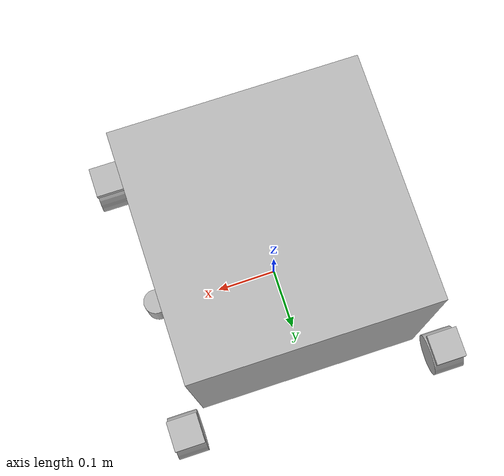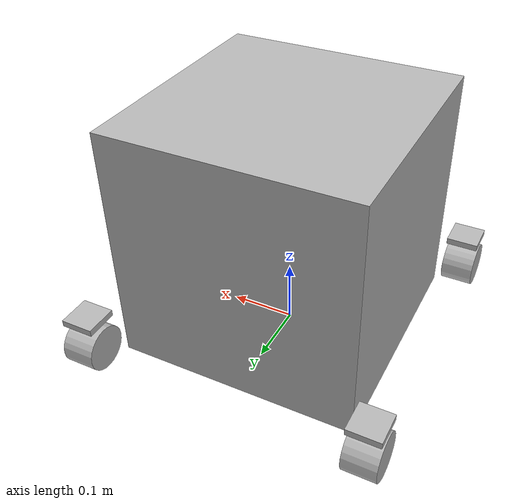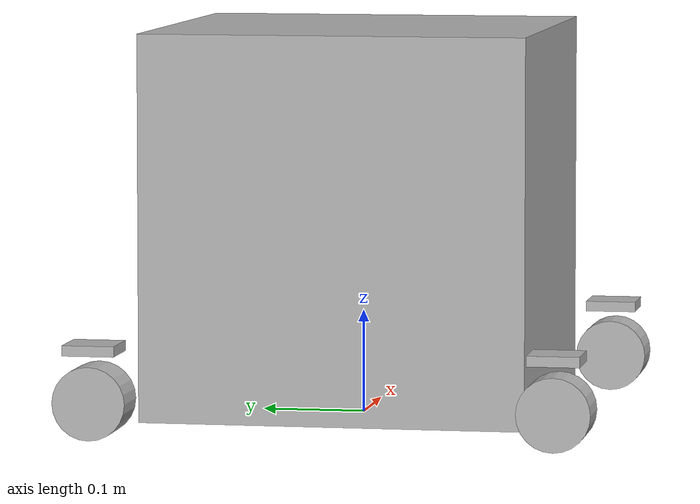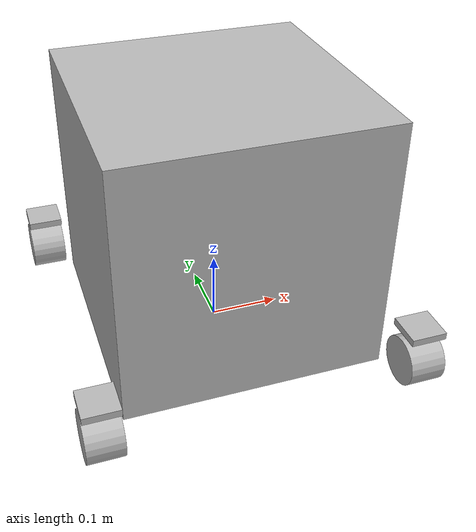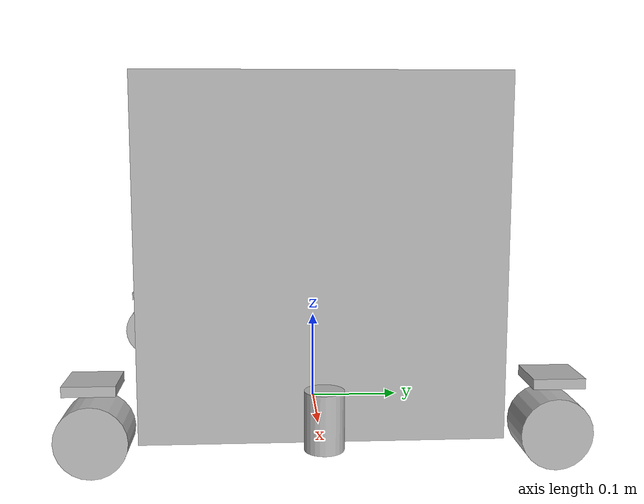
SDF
<sdf version='1.7'>
    <model name='rr_swerve'>
        <link name='base_link'>
            <inertial>
                <pose>0 0 0 0 -0 0</pose>
                <mass>0.1</mass>
                <inertia>
                    <ixx>0.0001</ixx>
                    <ixy>0</ixy>
                    <ixz>0</ixz>
                    <iyy>0.0001</iyy>
                    <iyz>0</iyz>
                    <izz>0.0001</izz>
                </inertia>
            </inertial>
            <collision name='base_link_collision'>
                <pose>0 0 0 0 -0 0</pose>
                <geometry>
                    <box>
                        <size>0.01 0.01 0.01</size>
                    </box>
                </geometry>
            </collision>
            <visual name='base_link_visual'>
                <pose>0 0 0 0 -0 0</pose>
                <geometry>
                    <box>
                        <size>0.01 0.01 0.01</size>
                    </box>
                </geometry>
            </visual>
        </link>
        <joint name='base_body_joint' type='revolute'>
            <pose relative_to='base_link'>0 0 0.195 0 -0 0</pose>
            <parent>base_link</parent>
            <child>body</child>
            <axis>
                <xyz>1 0 0</xyz>
                <limit>
                    <lower>0</lower>
                    <upper>0</upper>
                    <effort>0</effort>
                    <velocity>0</velocity>
                </limit>
                <dynamics>
                    <spring_reference>0</spring_reference>
                    <spring_stiffness>0</spring_stiffness>
                </dynamics>
            </axis>
        </joint>
        <link name='body'>
            <pose relative_to='base_body_joint'>0 0 0 0 -0 0</pose>
            <inertial>
                <pose>0 0 0 0 -0 0</pose>
                <mass>10</mass>
                <inertia>
                    <ixx>0.228167</ixx>
                    <ixy>0</ixy>
                    <ixz>0</ixz>
                    <iyy>0.228167</iyy>
                    <iyz>0</iyz>
                    <izz>0.228167</izz>
                </inertia>
            </inertial>
            <collision name='body_collision'>
                <pose>0 0 0 0 -0 0</pose>
                <geometry>
                    <box>
                        <size>0.3515 0.3515 0.3515</size>
                    </box>
                </geometry>
            </collision>
            <visual name='body_visual'>
                <pose>0 0 0 0 -0 0</pose>
                <geometry>
                    <box>
                        <size>0.37 0.37 0.37</size>
                    </box>
                </geometry>
            </visual>
        </link>
        <joint name='imu_joint' type='revolute'>
            <pose relative_to='base_link'>0 0 0.1 0 -0 0</pose>
            <parent>base_link</parent>
            <child>imu_link</child>
            <axis>
                <xyz>1 0 0</xyz>
                <limit>
                    <lower>0</lower>
                    <upper>0</upper>
                    <effort>0</effort>
                    <velocity>0</velocity>
                </limit>
                <dynamics>
                    <spring_reference>0</spring_reference>
                    <spring_stiffness>0</spring_stiffness>
                </dynamics>
            </axis>
        </joint>
        <link name='imu_link'>
            <pose relative_to='imu_joint'>0 0 0 0 -0 0</pose>
            <inertial>
                <pose>0 0 0 0 -0 0</pose>
                <mass>0.1</mass>
                <inertia>
                    <ixx>0.0001</ixx>
                    <ixy>0</ixy>
                    <ixz>0</ixz>
                    <iyy>0.0001</iyy>
                    <iyz>0</iyz>
                    <izz>0.0001</izz>
                </inertia>
            </inertial>
            <collision name='imu_link_collision'>
                <pose>0 0 0 0 -0 0</pose>
                <geometry>
                    <box>
                        <size>0.1 0.1 0.1</size>
                    </box>
                </geometry>
            </collision>
            <visual name='imu_link_visual'>
                <pose>0 0 0 0 -0 0</pose>
                <geometry>
                    <box>
                        <size>0.1 0.1 0.1</size>
                    </box>
                </geometry>
            </visual>
            <sensor name='imu' type='imu'>
                <always_on>1</always_on>
                <update_rate>100</update_rate>
                <visualize>true</visualize>
                <topic>imu</topic>
                <pose>0 0 0 0 0 0</pose>
            </sensor>
        </link>
        <joint name='lidar_joint' type='revolute'>
            <pose relative_to='base_link'>0.205 0 0.04 0 -0 0</pose>
            <parent>base_link</parent>
            <child>lidar_link</child>
            <axis>
                <xyz>1 0 0</xyz>
                <limit>
                    <lower>0</lower>
                    <upper>0</upper>
                    <effort>0</effort>
                    <velocity>0</velocity>
                </limit>
                <dynamics>
                    <spring_reference>0</spring_reference>
                    <spring_stiffness>0</spring_stiffness>
                </dynamics>
            </axis>
        </joint>
        <link name='lidar_link'>
            <pose relative_to='lidar_joint'>0 0 0 0 -0 0</pose>
            <inertial>
                <pose>0 0 0 0 -0 0</pose>
                <mass>0.2</mass>
                <inertia>
                    <ixx>0.0001</ixx>
                    <ixy>0</ixy>
                    <ixz>0</ixz>
                    <iyy>0.0001</iyy>
                    <iyz>0</iyz>
                    <izz>0.0001</izz>
                </inertia>
            </inertial>
            <collision name='lidar_link_collision'>
                <pose>0 0 0 0 -0 0</pose>
                <geometry>
                    <cylinder>
                        <length>0.06</length>
                        <radius>0.02</radius>
                    </cylinder>
                </geometry>
            </collision>
            <visual name='lidar_link_visual'>
                <pose>0 0 0 0 -0 0</pose>
                <geometry>
                    <cylinder>
                        <length>0.06</length>
                        <radius>0.02</radius>
                    </cylinder>
                </geometry>
            </visual>
            <sensor name='lidar' type='gpu_lidar'>
                <topic>lidar</topic>
                <update_rate>10</update_rate>
                <lidar>
                    <scan>
                        <horizontal>
                            <samples>640</samples>
                            <resolution>1</resolution>
                            <min_angle>-1.396263</min_angle>
                            <max_angle>1.396263</max_angle>
                        </horizontal>
                    </scan>
                    <range>
                        <min>0.08</min>
                        <max>10.0</max>
                        <resolution>0.01</resolution>
                    </range>
                </lidar>
                <alwaysOn>1</alwaysOn>
                <visualize>true</visualize>
            </sensor>
        </link>
        <joint name='wheel_lb_angular_joint' type='revolute'>
            <pose relative_to='base_link'>-0.22 0.22 0.085 1.5708 -0 0</pose>
            <parent>base_link</parent>
            <child>wheel_lb_round_table</child>
            <axis>
                <xyz>0 1 0</xyz>
                <limit>
                    <effort>6</effort>
                    <velocity>12</velocity>
                    <lower>-1e+16</lower>
                    <upper>1e+16</upper>
                </limit>
                <dynamics>
                    <damping>0.1</damping>
                    <friction>0</friction>
                    <spring_reference>0</spring_reference>
                    <spring_stiffness>0</spring_stiffness>
                </dynamics>
            </axis>
        </joint>
        <link name='wheel_lb_round_table'>
            <pose relative_to='wheel_lb_angular_joint'>0 0 0 0 -0 0</pose>
            <inertial>
                <pose>0 0 0 0 -0 0</pose>
                <mass>0.1</mass>
                <inertia>
                    <ixx>2.16667e-05</ixx>
                    <ixy>0</ixy>
                    <ixz>0</ixz>
                    <iyy>4.16667e-05</iyy>
                    <iyz>0</iyz>
                    <izz>2.16667e-05</izz>
                </inertia>
            </inertial>
            <collision name='wheel_lb_round_table_collision'>
                <pose>0 0 0 0 -0 0</pose>
                <geometry>
                    <box>
                        <size>0.0475 0.0095 0.0475</size>
                    </box>
                </geometry>
            </collision>
            <visual name='wheel_lb_round_table_visual'>
                <pose>0 0 0 0 -0 0</pose>
                <geometry>
                    <box>
                        <size>0.05 0.01 0.05</size>
                    </box>
                </geometry>
            </visual>
        </link>
        <joint name='wheel_lb_joint' type='revolute'>
            <pose relative_to='wheel_lb_round_table'>0 -0.05 0 0 1.5708 0</pose>
            <parent>wheel_lb_round_table</parent>
            <child>wheel_lb</child>
            <axis>
                <xyz>0 0 -1</xyz>
                <limit>
                    <effort>6</effort>
                    <velocity>60</velocity>
                    <lower>-1e+16</lower>
                    <upper>1e+16</upper>
                </limit>
                <dynamics>
                    <damping>0.1</damping>
                    <friction>0</friction>
                    <spring_reference>0</spring_reference>
                    <spring_stiffness>0</spring_stiffness>
                </dynamics>
            </axis>
        </joint>
        <link name='wheel_lb'>
            <pose relative_to='wheel_lb_joint'>0 0 0 0 -0 0</pose>
            <inertial>
                <pose>0 0 0 0 -0 0</pose>
                <mass>0.5</mass>
                <inertia>
                    <ixx>0.000257292</ixx>
                    <ixy>0</ixy>
                    <ixz>0</ixz>
                    <iyy>0.000257292</iyy>
                    <iyz>0</iyz>
                    <izz>0.00030625</izz>
                </inertia>
            </inertial>
            <collision name='wheel_lb_collision'>
                <pose>0 0 0 0 -0 0</pose>
                <geometry>
                    <cylinder>
                        <length>0.05</length>
                        <radius>0.035</radius>
                    </cylinder>
                </geometry>
            </collision>
            <visual name='wheel_lb_visual'>
                <pose>0 0 0 0 -0 0</pose>
                <geometry>
                    <cylinder>
                        <length>0.05</length>
                        <radius>0.035</radius>
                    </cylinder>
                </geometry>
            </visual>
        </link>
        <joint name='wheel_lf_angular_joint' type='revolute'>
            <pose relative_to='base_link'>0.22 0.22 0.085 1.5708 -0 0</pose>
            <parent>base_link</parent>
            <child>wheel_lf_round_table</child>
            <axis>
                <xyz>0 1 0</xyz>
                <limit>
                    <effort>6</effort>
                    <velocity>12</velocity>
                    <lower>-1e+16</lower>
                    <upper>1e+16</upper>
                </limit>
                <dynamics>
                    <damping>0.1</damping>
                    <friction>0</friction>
                    <spring_reference>0</spring_reference>
                    <spring_stiffness>0</spring_stiffness>
                </dynamics>
            </axis>
        </joint>
        <link name='wheel_lf_round_table'>
            <pose relative_to='wheel_lf_angular_joint'>0 0 0 0 -0 0</pose>
            <inertial>
                <pose>0 0 0 0 -0 0</pose>
                <mass>0.1</mass>
                <inertia>
                    <ixx>2.16667e-05</ixx>
                    <ixy>0</ixy>
                    <ixz>0</ixz>
                    <iyy>4.16667e-05</iyy>
                    <iyz>0</iyz>
                    <izz>2.16667e-05</izz>
                </inertia>
            </inertial>
            <collision name='wheel_lf_round_table_collision'>
                <pose>0 0 0 0 -0 0</pose>
                <geometry>
                    <box>
                        <size>0.0475 0.0095 0.0475</size>
                    </box>
                </geometry>
            </collision>
            <visual name='wheel_lf_round_table_visual'>
                <pose>0 0 0 0 -0 0</pose>
                <geometry>
                    <box>
                        <size>0.05 0.01 0.05</size>
                    </box>
                </geometry>
            </visual>
        </link>
        <joint name='wheel_lf_joint' type='revolute'>
            <pose relative_to='wheel_lf_round_table'>0 -0.05 0 0 1.5708 0</pose>
            <parent>wheel_lf_round_table</parent>
            <child>wheel_lf</child>
            <axis>
                <xyz>0 0 -1</xyz>
                <limit>
                    <effort>6</effort>
                    <velocity>60</velocity>
                    <lower>-1e+16</lower>
                    <upper>1e+16</upper>
                </limit>
                <dynamics>
                    <damping>0.1</damping>
                    <friction>0</friction>
                    <spring_reference>0</spring_reference>
                    <spring_stiffness>0</spring_stiffness>
                </dynamics>
            </axis>
        </joint>
        <link name='wheel_lf'>
            <pose relative_to='wheel_lf_joint'>0 0 0 0 -0 0</pose>
            <inertial>
                <pose>0 0 0 0 -0 0</pose>
                <mass>0.5</mass>
                <inertia>
                    <ixx>0.000257292</ixx>
                    <ixy>0</ixy>
                    <ixz>0</ixz>
                    <iyy>0.000257292</iyy>
                    <iyz>0</iyz>
                    <izz>0.00030625</izz>
                </inertia>
            </inertial>
            <collision name='wheel_lf_collision'>
                <pose>0 0 0 0 -0 0</pose>
                <geometry>
                    <cylinder>
                        <length>0.05</length>
                        <radius>0.035</radius>
                    </cylinder>
                </geometry>
            </collision>
            <visual name='wheel_lf_visual'>
                <pose>0 0 0 0 -0 0</pose>
                <geometry>
                    <cylinder>
                        <length>0.05</length>
                        <radius>0.035</radius>
                    </cylinder>
                </geometry>
            </visual>
        </link>
        <joint name='wheel_rb_angular_joint' type='revolute'>
            <pose relative_to='base_link'>-0.22 -0.22 0.085 1.5708 -0 0</pose>
            <parent>base_link</parent>
            <child>wheel_rb_round_table</child>
            <axis>
                <xyz>0 1 0</xyz>
                <limit>
                    <effort>6</effort>
                    <velocity>12</velocity>
                    <lower>-1e+16</lower>
                    <upper>1e+16</upper>
                </limit>
                <dynamics>
                    <damping>0.1</damping>
                    <friction>0</friction>
                    <spring_reference>0</spring_reference>
                    <spring_stiffness>0</spring_stiffness>
                </dynamics>
            </axis>
        </joint>
        <link name='wheel_rb_round_table'>
            <pose relative_to='wheel_rb_angular_joint'>0 0 0 0 -0 0</pose>
            <inertial>
                <pose>0 0 0 0 -0 0</pose>
                <mass>0.1</mass>
                <inertia>
                    <ixx>2.16667e-05</ixx>
                    <ixy>0</ixy>
                    <ixz>0</ixz>
                    <iyy>4.16667e-05</iyy>
                    <iyz>0</iyz>
                    <izz>2.16667e-05</izz>
                </inertia>
            </inertial>
            <collision name='wheel_rb_round_table_collision'>
                <pose>0 0 0 0 -0 0</pose>
                <geometry>
                    <box>
                        <size>0.0475 0.0095 0.0475</size>
                    </box>
                </geometry>
            </collision>
            <visual name='wheel_rb_round_table_visual'>
                <pose>0 0 0 0 -0 0</pose>
                <geometry>
                    <box>
                        <size>0.05 0.01 0.05</size>
                    </box>
                </geometry>
            </visual>
        </link>
        <joint name='wheel_rb_joint' type='revolute'>
            <pose relative_to='wheel_rb_round_table'>0 -0.05 0 0 1.5708 0</pose>
            <parent>wheel_rb_round_table</parent>
            <child>wheel_rb</child>
            <axis>
                <xyz>0 0 -1</xyz>
                <limit>
                    <effort>6</effort>
                    <velocity>60</velocity>
                    <lower>-1e+16</lower>
                    <upper>1e+16</upper>
                </limit>
                <dynamics>
                    <damping>0.1</damping>
                    <friction>0</friction>
                    <spring_reference>0</spring_reference>
                    <spring_stiffness>0</spring_stiffness>
                </dynamics>
            </axis>
        </joint>
        <link name='wheel_rb'>
            <pose relative_to='wheel_rb_joint'>0 0 0 0 -0 0</pose>
            <inertial>
                <pose>0 0 0 0 -0 0</pose>
                <mass>0.5</mass>
                <inertia>
                    <ixx>0.000257292</ixx>
                    <ixy>0</ixy>
                    <ixz>0</ixz>
                    <iyy>0.000257292</iyy>
                    <iyz>0</iyz>
                    <izz>0.00030625</izz>
                </inertia>
            </inertial>
            <collision name='wheel_rb_collision'>
                <pose>0 0 0 0 -0 0</pose>
                <geometry>
                    <cylinder>
                        <length>0.05</length>
                        <radius>0.035</radius>
                    </cylinder>
                </geometry>
            </collision>
            <visual name='wheel_rb_visual'>
                <pose>0 0 0 0 -0 0</pose>
                <geometry>
                    <cylinder>
                        <length>0.05</length>
                        <radius>0.035</radius>
                    </cylinder>
                </geometry>
            </visual>
        </link>
        <joint name='wheel_rf_angular_joint' type='revolute'>
            <pose relative_to='base_link'>0.22 -0.22 0.085 1.5708 -0 0</pose>
            <parent>base_link</parent>
            <child>wheel_rf_round_table</child>
            <axis>
                <xyz>0 1 0</xyz>
                <limit>
                    <effort>6</effort>
                    <velocity>12</velocity>
                    <lower>-1e+16</lower>
                    <upper>1e+16</upper>
                </limit>
                <dynamics>
                    <damping>0.1</damping>
                    <friction>0</friction>
                    <spring_reference>0</spring_reference>
                    <spring_stiffness>0</spring_stiffness>
                </dynamics>
            </axis>
        </joint>
        <link name='wheel_rf_round_table'>
            <pose relative_to='wheel_rf_angular_joint'>0 0 0 0 -0 0</pose>
            <inertial>
                <pose>0 0 0 0 -0 0</pose>
                <mass>0.1</mass>
                <inertia>
                    <ixx>2.16667e-05</ixx>
                    <ixy>0</ixy>
                    <ixz>0</ixz>
                    <iyy>4.16667e-05</iyy>
                    <iyz>0</iyz>
                    <izz>2.16667e-05</izz>
                </inertia>
            </inertial>
            <collision name='wheel_rf_round_table_collision'>
                <pose>0 0 0 0 -0 0</pose>
                <geometry>
                    <box>
                        <size>0.0475 0.0095 0.0475</size>
                    </box>
                </geometry>
            </collision>
            <visual name='wheel_rf_round_table_visual'>
                <pose>0 0 0 0 -0 0</pose>
                <geometry>
                    <box>
                        <size>0.05 0.01 0.05</size>
                    </box>
                </geometry>
            </visual>
        </link>
        <joint name='wheel_rf_joint' type='revolute'>
            <pose relative_to='wheel_rf_round_table'>0 -0.05 0 0 1.5708 0</pose>
            <parent>wheel_rf_round_table</parent>
            <child>wheel_rf</child>
            <axis>
                <xyz>0 0 -1</xyz>
                <limit>
                    <effort>6</effort>
                    <velocity>60</velocity>
                    <lower>-1e+16</lower>
                    <upper>1e+16</upper>
                </limit>
                <dynamics>
                    <damping>0.1</damping>
                    <friction>0</friction>
                    <spring_reference>0</spring_reference>
                    <spring_stiffness>0</spring_stiffness>
                </dynamics>
            </axis>
        </joint>
        <link name='wheel_rf'>
            <pose relative_to='wheel_rf_joint'>0 0 0 0 -0 0</pose>
            <inertial>
                <pose>0 0 0 0 -0 0</pose>
                <mass>0.5</mass>
                <inertia>
                    <ixx>0.000257292</ixx>
                    <ixy>0</ixy>
                    <ixz>0</ixz>
                    <iyy>0.000257292</iyy>
                    <iyz>0</iyz>
                    <izz>0.00030625</izz>
                </inertia>
            </inertial>
            <collision name='wheel_rf_collision'>
                <pose>0 0 0 0 -0 0</pose>
                <geometry>
                    <cylinder>
                        <length>0.05</length>
                        <radius>0.035</radius>
                    </cylinder>
                </geometry>
            </collision>
            <visual name='wheel_rf_visual'>
                <pose>0 0 0 0 -0 0</pose>
                <geometry>
                    <cylinder>
                        <length>0.05</length>
                        <radius>0.035</radius>
                    </cylinder>
                </geometry>
            </visual>
        </link>
        <plugin name='ignition::gazebo::systems::JointController' filename='ignition-gazebo-joint-controller-system'>
            <joint_name>wheel_rf_joint</joint_name>
            <joint_name>wheel_rf_angular_joint</joint_name>
        </plugin>
        <plugin name='ignition::gazebo::systems::JointController' filename='ignition-gazebo-joint-controller-system'>
            <joint_name>wheel_lf_joint</joint_name>
            <joint_name>wheel_lf_angular_joint</joint_name>
        </plugin>
        <plugin name='ignition::gazebo::systems::JointController' filename='ignition-gazebo-joint-controller-system'>
            <joint_name>wheel_rb_joint</joint_name>
            <joint_name>wheel_rb_angular_joint</joint_name>
        </plugin>
        <plugin name='ignition::gazebo::systems::JointController' filename='ignition-gazebo-joint-controller-system'>
            <joint_name>wheel_lb_joint</joint_name>
            <joint_name>wheel_lb_angular_joint</joint_name>
        </plugin>
        <static>0</static>
    </model>
</sdf>
